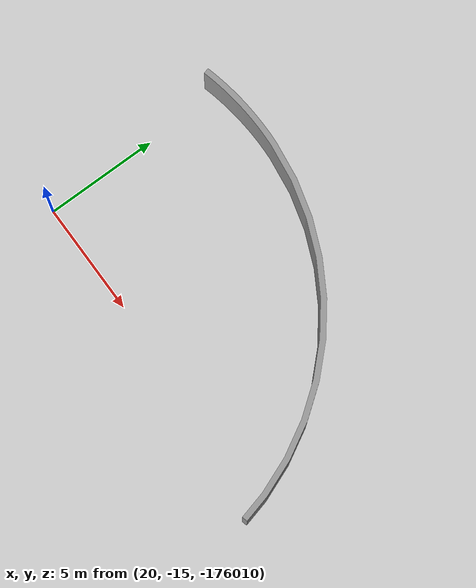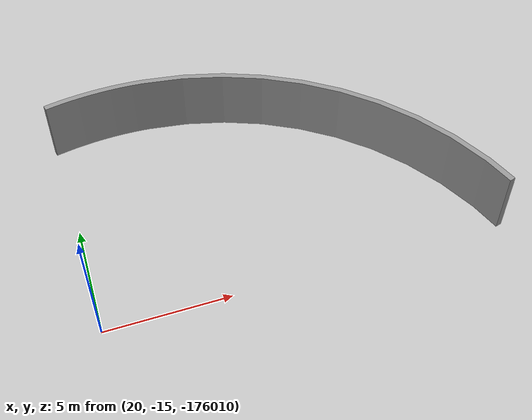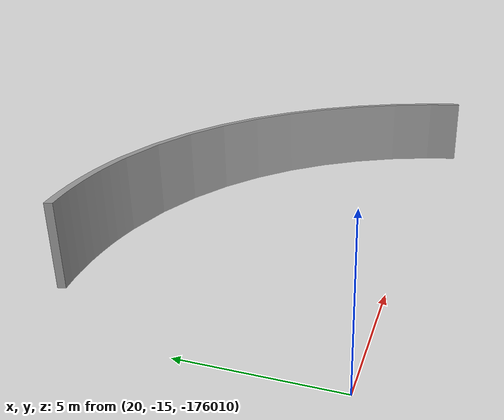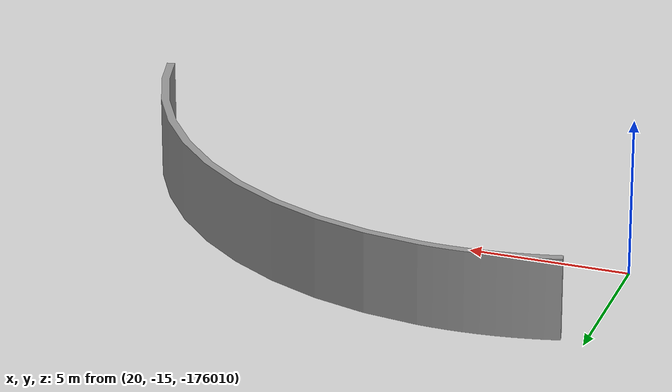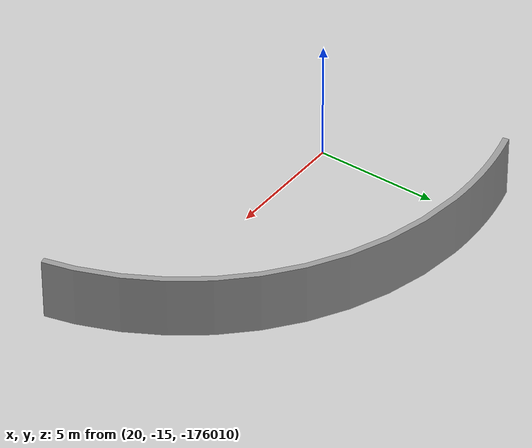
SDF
<sdf version="1.7">
 <world name="default">
  <model name="ground_plane">
   <static>1</static>
   <link name="link">
    <collision name="collision">
     <geometry><plane><normal>0 0 1</normal><size>100 100</size></plane></geometry>
     <surface>
      <contact><collide_bitmask>65535</collide_bitmask></contact>
      <friction><ode><mu>100</mu><mu2>50</mu2></ode></friction>
     </surface>
    </collision>
    <visual name="visual">
     <cast_shadows>0</cast_shadows>
     <geometry><plane><normal>0 0 1</normal><size>100 100</size></plane></geometry>
     <material>
      <script><uri>file://media/materials/scripts/gazebo.material</uri><name>Gazebo/Grey</name></script>
     </material>
    </visual>
   </link>
  </model>
  <model name="Curved_wall_1.25m_clone">
   <link name="link_0">
    <inertial>
     <mass>1</mass>
     <inertia>
      <ixx>0.166667</ixx>
      <ixy>0</ixy>
      <ixz>0</ixz>
      <iyy>0.166667</iyy>
      <iyz>0</iyz>
      <izz>0.166667</izz>
     </inertia>
    </inertial>
    <pose>-4.4e-05 -6e-06 0 0 -0 0</pose>
    <visual name="visual">
     <geometry><mesh><uri>meshes/curved wall.dae</uri><scale>1 1 1</scale></mesh></geometry>
     <material>
      <lighting>1</lighting>
      <script><uri>file://media/materials/scripts/gazebo.material</uri><name>Gazebo/Grey</name></script>
      <shader type="pixel"/>
     </material>
    </visual>
    <collision name="collision">
     <geometry><mesh><uri>meshes/curved wall.dae</uri><scale>1 1 1</scale></mesh></geometry>
     <surface>
      <friction>
       <ode><mu>1</mu><mu2>1</mu2><fdir1>0 0 0</fdir1><slip1>0</slip1><slip2>0</slip2></ode>
       <torsional>
        <coefficient>1</coefficient>
        <patch_radius>0</patch_radius>
        <surface_radius>0</surface_radius>
        <use_patch_radius>1</use_patch_radius>
        <ode><slip>0</slip></ode>
       </torsional>
      </friction>
      <bounce><restitution_coefficient>0</restitution_coefficient><threshold>1e+06</threshold></bounce>
      <contact>
       <collide_without_contact>0</collide_without_contact>
       <collide_without_contact_bitmask>1</collide_without_contact_bitmask>
       <collide_bitmask>1</collide_bitmask>
       <ode>
        <soft_cfm>0</soft_cfm>
        <soft_erp>0.2</soft_erp>
        <kp>1e+13</kp>
        <kd>1</kd>
        <max_vel>0.01</max_vel>
        <min_depth>0</min_depth>
       </ode>
       <bullet>
        <split_impulse>1</split_impulse>
        <split_impulse_penetration_threshold>-0.01</split_impulse_penetration_threshold>
        <soft_cfm>0</soft_cfm>
        <soft_erp>0.2</soft_erp>
        <kp>1e+13</kp>
        <kd>1</kd>
       </bullet>
      </contact>
     </surface>
    </collision>
   </link>
   <static>0</static>
   <pose>28.8437 -9.42147 -176007 2.4e-05 -3e-05 0.249755</pose>
  </model>
 </world>
</sdf>
